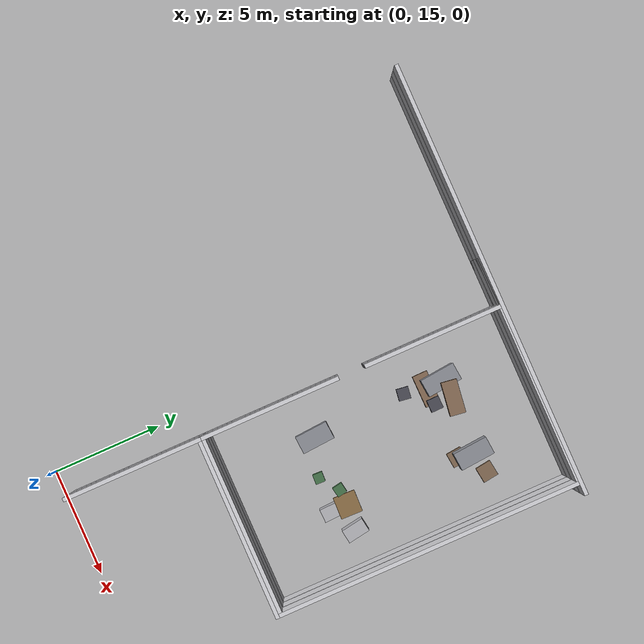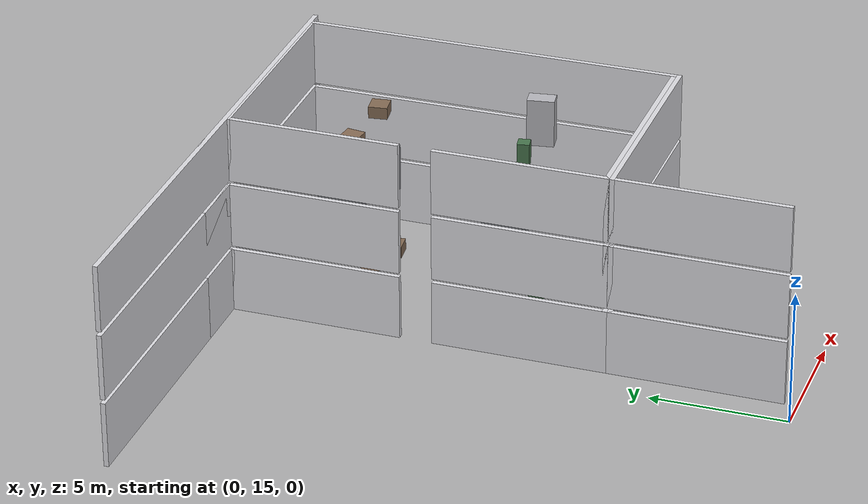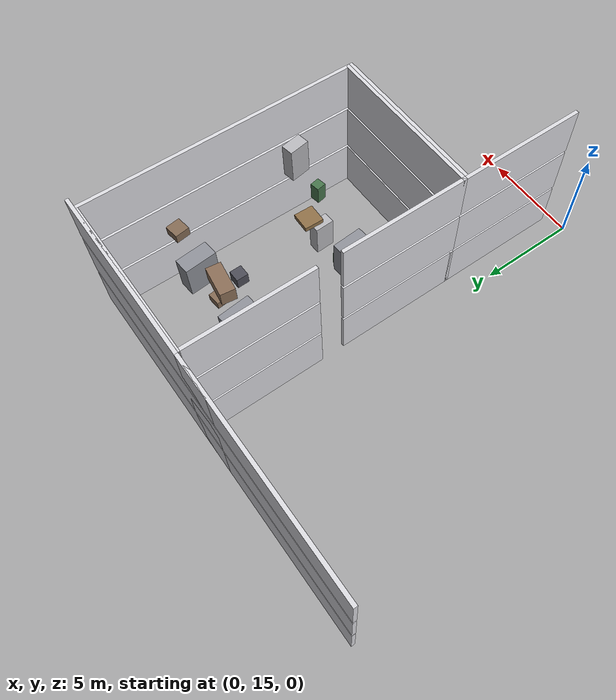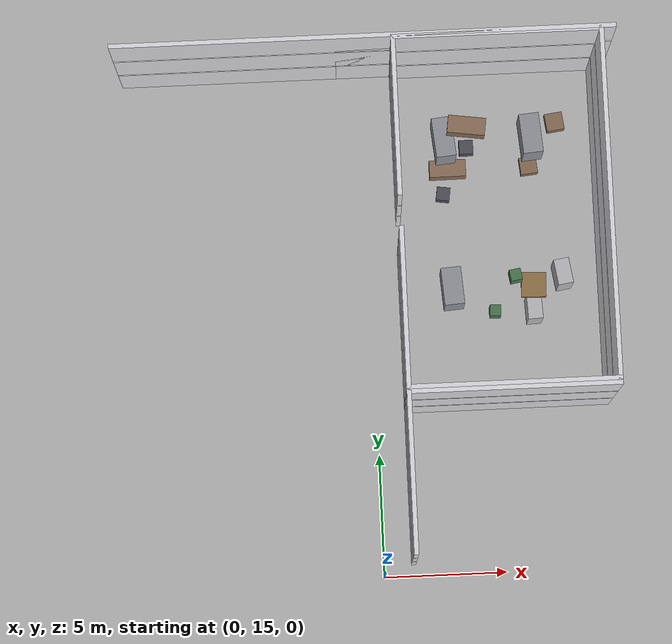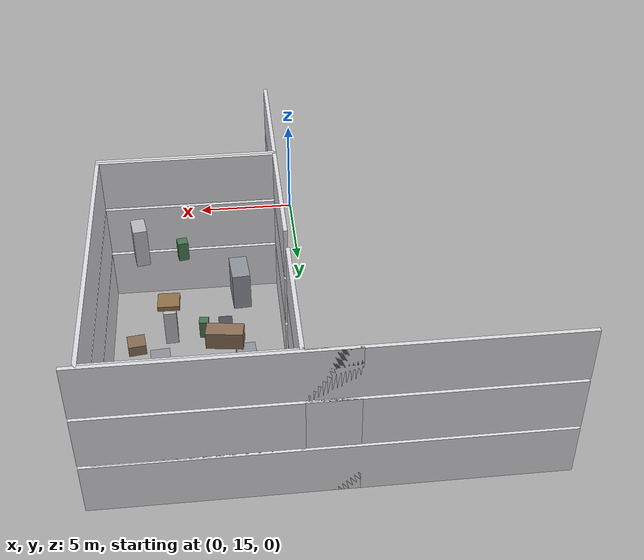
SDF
<sdf version="1.7">
 <model name="generated_building">
  <static>true</static>
  <link name="exterior_north_floor_0">
   <pose>0.0000 35.9100 1.2250 0.0000 0.0000 0.0000</pose>
   <collision name="exterior_north_floor_0_collision">
    <geometry><box><size>20.0000 0.1800 2.4500</size></box></geometry>
   </collision>
   <visual name="exterior_north_floor_0_visual">
    <geometry><box><size>20.0000 0.1800 2.4500</size></box></geometry>
    <material><ambient>0.86 0.86 0.88 1</ambient><diffuse>0.86 0.86 0.88 1</diffuse></material>
   </visual>
   <gravity>false</gravity>
  </link>
  <link name="north_end_wall_floor_0">
   <pose>0.0000 35.9100 1.2250 0.0000 0.0000 0.0000</pose>
   <collision name="north_end_wall_floor_0_collision">
    <geometry><box><size>2.2000 0.1800 2.4500</size></box></geometry>
   </collision>
   <visual name="north_end_wall_floor_0_visual">
    <geometry><box><size>2.2000 0.1800 2.4500</size></box></geometry>
    <material><ambient>0.86 0.86 0.88 1</ambient><diffuse>0.86 0.86 0.88 1</diffuse></material>
   </visual>
   <gravity>false</gravity>
  </link>
  <link name="floor_0_room_1_corridor_wall_upper">
   <pose>1.1900 18.6725 1.2250 0.0000 0.0000 0.0000</pose>
   <collision name="floor_0_room_1_corridor_wall_upper_collision">
    <geometry><box><size>0.1800 6.4150 2.4500</size></box></geometry>
   </collision>
   <visual name="floor_0_room_1_corridor_wall_upper_visual">
    <geometry><box><size>0.1800 6.4150 2.4500</size></box></geometry>
    <material><ambient>0.86 0.86 0.88 1</ambient><diffuse>0.86 0.86 0.88 1</diffuse></material>
   </visual>
   <gravity>false</gravity>
  </link>
  <link name="floor_0_room_1_north_wall">
   <pose>5.3000 21.7900 1.2250 0.0000 0.0000 0.0000</pose>
   <collision name="floor_0_room_1_north_wall_collision">
    <geometry><box><size>8.4000 0.1800 2.4500</size></box></geometry>
   </collision>
   <visual name="floor_0_room_1_north_wall_visual">
    <geometry><box><size>8.4000 0.1800 2.4500</size></box></geometry>
    <material><ambient>0.86 0.86 0.88 1</ambient><diffuse>0.86 0.86 0.88 1</diffuse></material>
   </visual>
   <gravity>false</gravity>
  </link>
  <link name="floor_0_room_3_corridor_wall_lower">
   <pose>1.1900 25.0875 1.2250 0.0000 0.0000 0.0000</pose>
   <collision name="floor_0_room_3_corridor_wall_lower_collision">
    <geometry><box><size>0.1800 6.4150 2.4500</size></box></geometry>
   </collision>
   <visual name="floor_0_room_3_corridor_wall_lower_visual">
    <geometry><box><size>0.1800 6.4150 2.4500</size></box></geometry>
    <material><ambient>0.86 0.86 0.88 1</ambient><diffuse>0.86 0.86 0.88 1</diffuse></material>
   </visual>
   <gravity>false</gravity>
  </link>
  <link name="floor_0_room_3_corridor_wall_upper">
   <pose>1.1900 32.7025 1.2250 0.0000 0.0000 0.0000</pose>
   <collision name="floor_0_room_3_corridor_wall_upper_collision">
    <geometry><box><size>0.1800 6.4150 2.4500</size></box></geometry>
   </collision>
   <visual name="floor_0_room_3_corridor_wall_upper_visual">
    <geometry><box><size>0.1800 6.4150 2.4500</size></box></geometry>
    <material><ambient>0.86 0.86 0.88 1</ambient><diffuse>0.86 0.86 0.88 1</diffuse></material>
   </visual>
   <gravity>false</gravity>
  </link>
  <link name="floor_0_room_3_east_wall">
   <pose>9.4100 28.8950 1.2250 0.0000 0.0000 0.0000</pose>
   <collision name="floor_0_room_3_east_wall_collision">
    <geometry><box><size>0.1800 14.0300 2.4500</size></box></geometry>
   </collision>
   <visual name="floor_0_room_3_east_wall_visual">
    <geometry><box><size>0.1800 14.0300 2.4500</size></box></geometry>
    <material><ambient>0.86 0.86 0.88 1</ambient><diffuse>0.86 0.86 0.88 1</diffuse></material>
   </visual>
   <gravity>false</gravity>
  </link>
  <link name="floor_0_room_3_south_wall">
   <pose>5.3000 21.9700 1.2250 0.0000 0.0000 0.0000</pose>
   <collision name="floor_0_room_3_south_wall_collision">
    <geometry><box><size>8.4000 0.1800 2.4500</size></box></geometry>
   </collision>
   <visual name="floor_0_room_3_south_wall_visual">
    <geometry><box><size>8.4000 0.1800 2.4500</size></box></geometry>
    <material><ambient>0.86 0.86 0.88 1</ambient><diffuse>0.86 0.86 0.88 1</diffuse></material>
   </visual>
   <gravity>false</gravity>
  </link>
  <link name="floor_0_room_3_north_wall">
   <pose>5.3000 35.8200 1.2250 0.0000 0.0000 0.0000</pose>
   <collision name="floor_0_room_3_north_wall_collision">
    <geometry><box><size>8.4000 0.1800 2.4500</size></box></geometry>
   </collision>
   <visual name="floor_0_room_3_north_wall_visual">
    <geometry><box><size>8.4000 0.1800 2.4500</size></box></geometry>
    <material><ambient>0.86 0.86 0.88 1</ambient><diffuse>0.86 0.86 0.88 1</diffuse></material>
   </visual>
   <gravity>false</gravity>
  </link>
  <link name="floor_0_room_3_desk">
   <pose>3.32821342 31.6858563 0.45 0 0 0.0100471294</pose>
   <collision name="floor_0_room_3_desk_collision">
    <geometry><box><size>1.5000 0.7000 0.7500</size></box></geometry>
   </collision>
   <visual name="floor_0_room_3_desk_visual">
    <geometry><box><size>1.5000 0.7000 0.7500</size></box></geometry>
    <material><ambient>0.54 0.43 0.34 1</ambient><diffuse>0.54 0.43 0.34 1</diffuse></material>
   </visual>
   <gravity>false</gravity>
  </link>
  <link name="floor_0_room_3_chair">
   <pose>3.11130846 30.6734679 0.28 0 0 -0.134448262</pose>
   <collision name="floor_0_room_3_chair_collision">
    <geometry><box><size>0.5500 0.5500 0.5500</size></box></geometry>
   </collision>
   <visual name="floor_0_room_3_chair_visual">
    <geometry><box><size>0.5500 0.5500 0.5500</size></box></geometry>
    <material><ambient>0.30 0.30 0.34 1</ambient><diffuse>0.30 0.30 0.34 1</diffuse></material>
   </visual>
   <gravity>false</gravity>
  </link>
  <link name="floor_0_room_3_cabinet">
   <pose>6.58164005 25.6609611 0.9 0 0 0.0411782034</pose>
   <collision name="floor_0_room_3_cabinet_collision">
    <geometry><box><size>0.6000 1.0000 1.8000</size></box></geometry>
   </collision>
   <visual name="floor_0_room_3_cabinet_visual">
    <geometry><box><size>0.6000 1.0000 1.8000</size></box></geometry>
    <material><ambient>0.72 0.72 0.74 1</ambient><diffuse>0.72 0.72 0.74 1</diffuse></material>
   </visual>
   <gravity>false</gravity>
  </link>
  <link name="floor_0_room_3_side_table">
   <pose>6.68390586 31.7130007 0.32 0 0 0.102052026</pose>
   <collision name="floor_0_room_3_side_table_collision">
    <geometry><box><size>0.7000 0.7000 0.4500</size></box></geometry>
   </collision>
   <visual name="floor_0_room_3_side_table_visual">
    <geometry><box><size>0.7000 0.7000 0.4500</size></box></geometry>
    <material><ambient>0.52 0.42 0.33 1</ambient><diffuse>0.52 0.42 0.33 1</diffuse></material>
   </visual>
   <gravity>false</gravity>
  </link>
  <link name="floor_0_room_3_planter">
   <pose>5.01652921 25.6828302 0.45 0 0 -0.0366846639</pose>
   <collision name="floor_0_room_3_planter_collision">
    <geometry><box><size>0.4500 0.4500 0.9000</size></box></geometry>
   </collision>
   <visual name="floor_0_room_3_planter_visual">
    <geometry><box><size>0.4500 0.4500 0.9000</size></box></geometry>
    <material><ambient>0.28 0.46 0.30 1</ambient><diffuse>0.28 0.46 0.30 1</diffuse></material>
   </visual>
   <gravity>false</gravity>
  </link>
  <link name="exterior_north_floor_1">
   <pose>0.0000 35.9100 3.8250 0.0000 0.0000 0.0000</pose>
   <collision name="exterior_north_floor_1_collision">
    <geometry><box><size>20.0000 0.1800 2.4500</size></box></geometry>
   </collision>
   <visual name="exterior_north_floor_1_visual">
    <geometry><box><size>20.0000 0.1800 2.4500</size></box></geometry>
    <material><ambient>0.86 0.86 0.88 1</ambient><diffuse>0.86 0.86 0.88 1</diffuse></material>
   </visual>
   <gravity>false</gravity>
  </link>
  <link name="north_end_wall_floor_1">
   <pose>0.0000 35.9100 3.8250 0.0000 0.0000 0.0000</pose>
   <collision name="north_end_wall_floor_1_collision">
    <geometry><box><size>2.2000 0.1800 2.4500</size></box></geometry>
   </collision>
   <visual name="north_end_wall_floor_1_visual">
    <geometry><box><size>2.2000 0.1800 2.4500</size></box></geometry>
    <material><ambient>0.86 0.86 0.88 1</ambient><diffuse>0.86 0.86 0.88 1</diffuse></material>
   </visual>
   <gravity>false</gravity>
  </link>
  <link name="floor_1_room_1_corridor_wall_upper">
   <pose>1.1900 18.6725 3.8250 0.0000 0.0000 0.0000</pose>
   <collision name="floor_1_room_1_corridor_wall_upper_collision">
    <geometry><box><size>0.1800 6.4150 2.4500</size></box></geometry>
   </collision>
   <visual name="floor_1_room_1_corridor_wall_upper_visual">
    <geometry><box><size>0.1800 6.4150 2.4500</size></box></geometry>
    <material><ambient>0.86 0.86 0.88 1</ambient><diffuse>0.86 0.86 0.88 1</diffuse></material>
   </visual>
   <gravity>false</gravity>
  </link>
  <link name="floor_1_room_1_north_wall">
   <pose>5.3000 21.7900 3.8250 0.0000 0.0000 0.0000</pose>
   <collision name="floor_1_room_1_north_wall_collision">
    <geometry><box><size>8.4000 0.1800 2.4500</size></box></geometry>
   </collision>
   <visual name="floor_1_room_1_north_wall_visual">
    <geometry><box><size>8.4000 0.1800 2.4500</size></box></geometry>
    <material><ambient>0.86 0.86 0.88 1</ambient><diffuse>0.86 0.86 0.88 1</diffuse></material>
   </visual>
   <gravity>false</gravity>
  </link>
  <link name="floor_1_room_3_corridor_wall_lower">
   <pose>1.1900 25.0875 3.8250 0.0000 0.0000 0.0000</pose>
   <collision name="floor_1_room_3_corridor_wall_lower_collision">
    <geometry><box><size>0.1800 6.4150 2.4500</size></box></geometry>
   </collision>
   <visual name="floor_1_room_3_corridor_wall_lower_visual">
    <geometry><box><size>0.1800 6.4150 2.4500</size></box></geometry>
    <material><ambient>0.86 0.86 0.88 1</ambient><diffuse>0.86 0.86 0.88 1</diffuse></material>
   </visual>
   <gravity>false</gravity>
  </link>
  <link name="floor_1_room_3_corridor_wall_upper">
   <pose>1.1900 32.7025 3.8250 0.0000 0.0000 0.0000</pose>
   <collision name="floor_1_room_3_corridor_wall_upper_collision">
    <geometry><box><size>0.1800 6.4150 2.4500</size></box></geometry>
   </collision>
   <visual name="floor_1_room_3_corridor_wall_upper_visual">
    <geometry><box><size>0.1800 6.4150 2.4500</size></box></geometry>
    <material><ambient>0.86 0.86 0.88 1</ambient><diffuse>0.86 0.86 0.88 1</diffuse></material>
   </visual>
   <gravity>false</gravity>
  </link>
  <link name="floor_1_room_3_east_wall">
   <pose>9.4100 28.8950 3.8250 0.0000 0.0000 0.0000</pose>
   <collision name="floor_1_room_3_east_wall_collision">
    <geometry><box><size>0.1800 14.0300 2.4500</size></box></geometry>
   </collision>
   <visual name="floor_1_room_3_east_wall_visual">
    <geometry><box><size>0.1800 14.0300 2.4500</size></box></geometry>
    <material><ambient>0.86 0.86 0.88 1</ambient><diffuse>0.86 0.86 0.88 1</diffuse></material>
   </visual>
   <gravity>false</gravity>
  </link>
  <link name="floor_1_room_3_south_wall">
   <pose>5.3000 21.9700 3.8250 0.0000 0.0000 0.0000</pose>
   <collision name="floor_1_room_3_south_wall_collision">
    <geometry><box><size>8.4000 0.1800 2.4500</size></box></geometry>
   </collision>
   <visual name="floor_1_room_3_south_wall_visual">
    <geometry><box><size>8.4000 0.1800 2.4500</size></box></geometry>
    <material><ambient>0.86 0.86 0.88 1</ambient><diffuse>0.86 0.86 0.88 1</diffuse></material>
   </visual>
   <gravity>false</gravity>
  </link>
  <link name="floor_1_room_3_north_wall">
   <pose>5.3000 35.8200 3.8250 0.0000 0.0000 0.0000</pose>
   <collision name="floor_1_room_3_north_wall_collision">
    <geometry><box><size>8.4000 0.1800 2.4500</size></box></geometry>
   </collision>
   <visual name="floor_1_room_3_north_wall_visual">
    <geometry><box><size>8.4000 0.1800 2.4500</size></box></geometry>
    <material><ambient>0.86 0.86 0.88 1</ambient><diffuse>0.86 0.86 0.88 1</diffuse></material>
   </visual>
   <gravity>false</gravity>
  </link>
  <link name="floor_1_room_3_rack_a">
   <pose>3.11626826 32.3416385 3.5 0 0 0.0966155681</pose>
   <collision name="floor_1_room_3_rack_a_collision">
    <geometry><box><size>0.8000 1.6000 1.8000</size></box></geometry>
   </collision>
   <visual name="floor_1_room_3_rack_a_visual">
    <geometry><box><size>0.8000 1.6000 1.8000</size></box></geometry>
    <material><ambient>0.56 0.57 0.60 1</ambient><diffuse>0.56 0.57 0.60 1</diffuse></material>
   </visual>
   <gravity>false</gravity>
  </link>
  <link name="floor_1_room_3_rack_b">
   <pose>6.63130504 32.3479166 3.5 0 0 0.0822238825</pose>
   <collision name="floor_1_room_3_rack_b_collision">
    <geometry><box><size>0.8000 1.6000 1.8000</size></box></geometry>
   </collision>
   <visual name="floor_1_room_3_rack_b_visual">
    <geometry><box><size>0.8000 1.6000 1.8000</size></box></geometry>
    <material><ambient>0.56 0.57 0.60 1</ambient><diffuse>0.56 0.57 0.60 1</diffuse></material>
   </visual>
   <gravity>false</gravity>
  </link>
  <link name="floor_1_room_3_rack_c">
   <pose>3.1903556 26.2900191 3.5 0 0 0.0706468928</pose>
   <collision name="floor_1_room_3_rack_c_collision">
    <geometry><box><size>0.8000 1.5000 1.8000</size></box></geometry>
   </collision>
   <visual name="floor_1_room_3_rack_c_visual">
    <geometry><box><size>0.8000 1.5000 1.8000</size></box></geometry>
    <material><ambient>0.56 0.57 0.60 1</ambient><diffuse>0.56 0.57 0.60 1</diffuse></material>
   </visual>
   <gravity>false</gravity>
  </link>
  <link name="floor_1_room_3_pallet">
   <pose>6.51359247 26.4079548 2.72 0 0 -0.0290461162</pose>
   <collision name="floor_1_room_3_pallet_collision">
    <geometry><box><size>1.0000 1.0000 0.2400</size></box></geometry>
   </collision>
   <visual name="floor_1_room_3_pallet_visual">
    <geometry><box><size>1.0000 1.0000 0.2400</size></box></geometry>
    <material><ambient>0.56 0.44 0.28 1</ambient><diffuse>0.56 0.44 0.28 1</diffuse></material>
   </visual>
   <gravity>false</gravity>
  </link>
  <link name="exterior_north_floor_2">
   <pose>0.0000 35.9100 6.4250 0.0000 0.0000 0.0000</pose>
   <collision name="exterior_north_floor_2_collision">
    <geometry><box><size>20.0000 0.1800 2.4500</size></box></geometry>
   </collision>
   <visual name="exterior_north_floor_2_visual">
    <geometry><box><size>20.0000 0.1800 2.4500</size></box></geometry>
    <material><ambient>0.86 0.86 0.88 1</ambient><diffuse>0.86 0.86 0.88 1</diffuse></material>
   </visual>
   <gravity>false</gravity>
  </link>
  <link name="north_end_wall_floor_2">
   <pose>0.0000 35.9100 6.4250 0.0000 0.0000 0.0000</pose>
   <collision name="north_end_wall_floor_2_collision">
    <geometry><box><size>2.2000 0.1800 2.4500</size></box></geometry>
   </collision>
   <visual name="north_end_wall_floor_2_visual">
    <geometry><box><size>2.2000 0.1800 2.4500</size></box></geometry>
    <material><ambient>0.86 0.86 0.88 1</ambient><diffuse>0.86 0.86 0.88 1</diffuse></material>
   </visual>
   <gravity>false</gravity>
  </link>
  <link name="floor_2_room_1_corridor_wall_upper">
   <pose>1.1900 18.6725 6.4250 0.0000 0.0000 0.0000</pose>
   <collision name="floor_2_room_1_corridor_wall_upper_collision">
    <geometry><box><size>0.1800 6.4150 2.4500</size></box></geometry>
   </collision>
   <visual name="floor_2_room_1_corridor_wall_upper_visual">
    <geometry><box><size>0.1800 6.4150 2.4500</size></box></geometry>
    <material><ambient>0.86 0.86 0.88 1</ambient><diffuse>0.86 0.86 0.88 1</diffuse></material>
   </visual>
   <gravity>false</gravity>
  </link>
  <link name="floor_2_room_1_north_wall">
   <pose>5.3000 21.7900 6.4250 0.0000 0.0000 0.0000</pose>
   <collision name="floor_2_room_1_north_wall_collision">
    <geometry><box><size>8.4000 0.1800 2.4500</size></box></geometry>
   </collision>
   <visual name="floor_2_room_1_north_wall_visual">
    <geometry><box><size>8.4000 0.1800 2.4500</size></box></geometry>
    <material><ambient>0.86 0.86 0.88 1</ambient><diffuse>0.86 0.86 0.88 1</diffuse></material>
   </visual>
   <gravity>false</gravity>
  </link>
  <link name="floor_2_room_3_corridor_wall_lower">
   <pose>1.1900 25.0875 6.4250 0.0000 0.0000 0.0000</pose>
   <collision name="floor_2_room_3_corridor_wall_lower_collision">
    <geometry><box><size>0.1800 6.4150 2.4500</size></box></geometry>
   </collision>
   <visual name="floor_2_room_3_corridor_wall_lower_visual">
    <geometry><box><size>0.1800 6.4150 2.4500</size></box></geometry>
    <material><ambient>0.86 0.86 0.88 1</ambient><diffuse>0.86 0.86 0.88 1</diffuse></material>
   </visual>
   <gravity>false</gravity>
  </link>
  <link name="floor_2_room_3_corridor_wall_upper">
   <pose>1.1900 32.7025 6.4250 0.0000 0.0000 0.0000</pose>
   <collision name="floor_2_room_3_corridor_wall_upper_collision">
    <geometry><box><size>0.1800 6.4150 2.4500</size></box></geometry>
   </collision>
   <visual name="floor_2_room_3_corridor_wall_upper_visual">
    <geometry><box><size>0.1800 6.4150 2.4500</size></box></geometry>
    <material><ambient>0.86 0.86 0.88 1</ambient><diffuse>0.86 0.86 0.88 1</diffuse></material>
   </visual>
   <gravity>false</gravity>
  </link>
  <link name="floor_2_room_3_east_wall">
   <pose>9.4100 28.8950 6.4250 0.0000 0.0000 0.0000</pose>
   <collision name="floor_2_room_3_east_wall_collision">
    <geometry><box><size>0.1800 14.0300 2.4500</size></box></geometry>
   </collision>
   <visual name="floor_2_room_3_east_wall_visual">
    <geometry><box><size>0.1800 14.0300 2.4500</size></box></geometry>
    <material><ambient>0.86 0.86 0.88 1</ambient><diffuse>0.86 0.86 0.88 1</diffuse></material>
   </visual>
   <gravity>false</gravity>
  </link>
  <link name="floor_2_room_3_south_wall">
   <pose>5.3000 21.9700 6.4250 0.0000 0.0000 0.0000</pose>
   <collision name="floor_2_room_3_south_wall_collision">
    <geometry><box><size>8.4000 0.1800 2.4500</size></box></geometry>
   </collision>
   <visual name="floor_2_room_3_south_wall_visual">
    <geometry><box><size>8.4000 0.1800 2.4500</size></box></geometry>
    <material><ambient>0.86 0.86 0.88 1</ambient><diffuse>0.86 0.86 0.88 1</diffuse></material>
   </visual>
   <gravity>false</gravity>
  </link>
  <link name="floor_2_room_3_north_wall">
   <pose>5.3000 35.8200 6.4250 0.0000 0.0000 0.0000</pose>
   <collision name="floor_2_room_3_north_wall_collision">
    <geometry><box><size>8.4000 0.1800 2.4500</size></box></geometry>
   </collision>
   <visual name="floor_2_room_3_north_wall_visual">
    <geometry><box><size>8.4000 0.1800 2.4500</size></box></geometry>
    <material><ambient>0.86 0.86 0.88 1</ambient><diffuse>0.86 0.86 0.88 1</diffuse></material>
   </visual>
   <gravity>false</gravity>
  </link>
  <link name="floor_2_room_3_desk">
   <pose>3.98232931 32.4640041 5.65 0 0 -0.137092182</pose>
   <collision name="floor_2_room_3_desk_collision">
    <geometry><box><size>1.5000 0.7000 0.7500</size></box></geometry>
   </collision>
   <visual name="floor_2_room_3_desk_visual">
    <geometry><box><size>1.5000 0.7000 0.7500</size></box></geometry>
    <material><ambient>0.54 0.43 0.34 1</ambient><diffuse>0.54 0.43 0.34 1</diffuse></material>
   </visual>
   <gravity>false</gravity>
  </link>
  <link name="floor_2_room_3_chair">
   <pose>3.92997394 31.630716 5.48 0 0 0.01606442</pose>
   <collision name="floor_2_room_3_chair_collision">
    <geometry><box><size>0.5500 0.5500 0.5500</size></box></geometry>
   </collision>
   <visual name="floor_2_room_3_chair_visual">
    <geometry><box><size>0.5500 0.5500 0.5500</size></box></geometry>
    <material><ambient>0.30 0.30 0.34 1</ambient><diffuse>0.30 0.30 0.34 1</diffuse></material>
   </visual>
   <gravity>false</gravity>
  </link>
  <link name="floor_2_room_3_cabinet">
   <pose>7.4553752 26.3115801 6.1 0 0 0.156440726</pose>
   <collision name="floor_2_room_3_cabinet_collision">
    <geometry><box><size>0.6000 1.0000 1.8000</size></box></geometry>
   </collision>
   <visual name="floor_2_room_3_cabinet_visual">
    <geometry><box><size>0.6000 1.0000 1.8000</size></box></geometry>
    <material><ambient>0.72 0.72 0.74 1</ambient><diffuse>0.72 0.72 0.74 1</diffuse></material>
   </visual>
   <gravity>false</gravity>
  </link>
  <link name="floor_2_room_3_side_table">
   <pose>7.48818056 32.5054985 5.52 0 0 0.135830353</pose>
   <collision name="floor_2_room_3_side_table_collision">
    <geometry><box><size>0.7000 0.7000 0.4500</size></box></geometry>
   </collision>
   <visual name="floor_2_room_3_side_table_visual">
    <geometry><box><size>0.7000 0.7000 0.4500</size></box></geometry>
    <material><ambient>0.52 0.42 0.33 1</ambient><diffuse>0.52 0.42 0.33 1</diffuse></material>
   </visual>
   <gravity>false</gravity>
  </link>
  <link name="floor_2_room_3_planter">
   <pose>5.63320667 26.3838569 5.65 0 0 0.172994726</pose>
   <collision name="floor_2_room_3_planter_collision">
    <geometry><box><size>0.4500 0.4500 0.9000</size></box></geometry>
   </collision>
   <visual name="floor_2_room_3_planter_visual">
    <geometry><box><size>0.4500 0.4500 0.9000</size></box></geometry>
    <material><ambient>0.28 0.46 0.30 1</ambient><diffuse>0.28 0.46 0.30 1</diffuse></material>
   </visual>
   <gravity>false</gravity>
  </link>
 </model>
</sdf>
